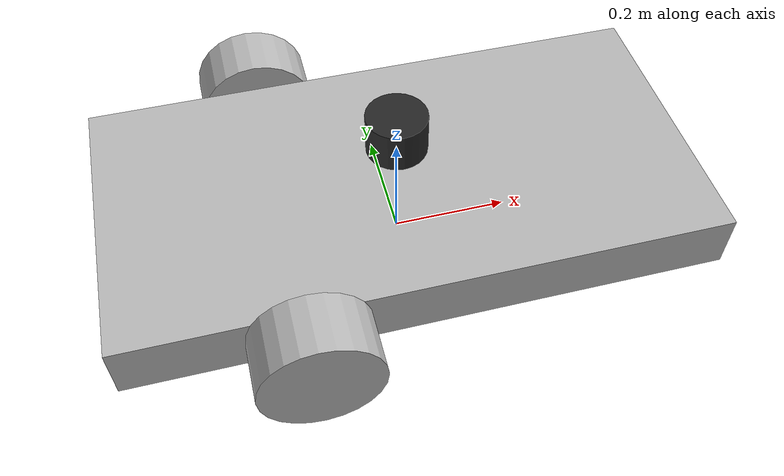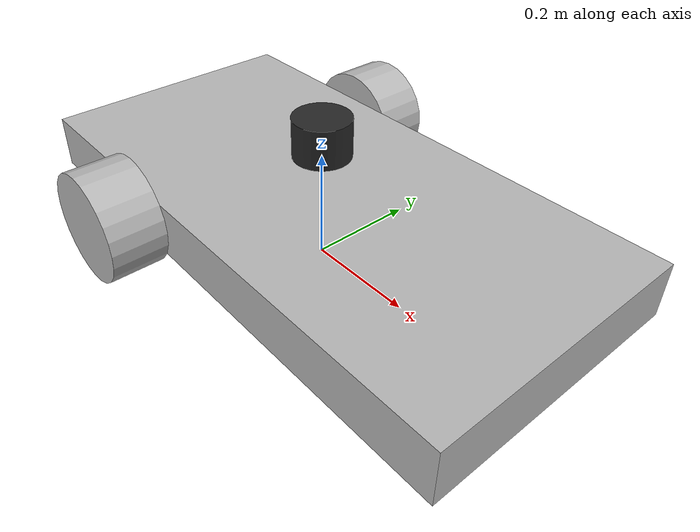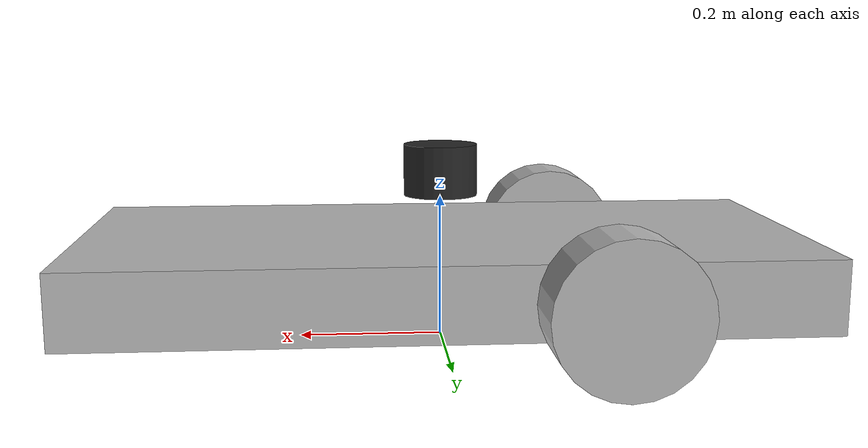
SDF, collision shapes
<?xml version="1.0" encoding="UTF-8"?>
<sdf version="1.9">
  <model name="rover_differential_lidar_3d">
    <include merge="true">
      <uri>model://rover_differential</uri>
    </include>
    <include merge="true">
      <uri>model://lidar_3d_v1</uri>
      <pose>0 0 0.2 0 0 0</pose>
    </include>
    <joint name="LidarJoint" type="fixed">
      <parent>base_link</parent>
      <child>link</child>
      <pose relative_to="base_link">0 0 0.2 0 0 0</pose>
    </joint>
  </model>
</sdf>

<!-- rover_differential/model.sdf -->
<sdf version="1.6">
  <model name='rover_differential'>
    <!--Links-->
    <link name='base_link'>
      <pose relative_to='__model__'>0 0 0.1 0 0 0</pose>
      <inertial>
        <mass>5.0</mass>
        <pose>-0.2 0 0 0 0 0</pose> <!-- Center of mass offset to wheel axis-->
        <inertia>
          <ixx>0.030208333</ixx>
          <ixy>0.0</ixy>
          <ixz>0.0</ixz>
          <iyy>0.108333333</iyy>
          <iyz>0.0</iyz>
          <izz>0.130208333</izz>
        </inertia>
      </inertial>
      <visual name='visual'>
        <pose>0 0 -0.05 0 0 0</pose>
        <geometry>
          <mesh>
            <uri>model://rover_differential/meshes/rover_differential_base.dae</uri>
          </mesh>
        </geometry>
      </visual>
      <collision name='collision'>
        <geometry>
          <box>
            <size>1 0.5 0.1</size>
          </box>
        </geometry>
      </collision>

      <!--Sensors-->
      <sensor name="air_pressure_sensor" type="air_pressure">
        <always_on>1</always_on>
        <update_rate>50</update_rate>
        <air_pressure>
          <!-- Noise modeled after BMP390 -->
          <pressure>
            <noise type="gaussian">
              <mean>0</mean>
              <stddev>3</stddev>
            </noise>
          </pressure>
        </air_pressure>
      </sensor>
      <sensor name="magnetometer_sensor" type="magnetometer">
        <always_on>1</always_on>
        <update_rate>100</update_rate>
        <magnetometer>
          <!-- TODO: update to fix units and coordinate system when we move past Harmonic -->
          <!-- See https://github.com/gazebosim/gz-sim/pull/2460 -->
          <!-- 3mgauss RMS: NOTE: noise is in tesla but sensor reports data in gauss -->
          <!-- Noise modeled after IIS2MDC -->
          <x>
            <noise type="gaussian">
              <stddev>0.0001</stddev>
            </noise>
          </x>
          <y>
            <noise type="gaussian">
              <stddev>0.0001</stddev>
            </noise>
          </y>
          <z>
            <noise type="gaussian">
              <stddev>0.0001</stddev>
            </noise>
          </z>
        </magnetometer>
      </sensor>
      <sensor name="imu_sensor" type="imu">
        <always_on>1</always_on>
        <update_rate>250</update_rate>
        <imu>
          <angular_velocity>
            <!-- Noise modeled after IIM42653 -->
            <!-- 0.05 deg/s converted to rad/s -->
            <x>
              <noise type="gaussian">
                <mean>0.0</mean>
                <stddev>0.0008726646</stddev>
              </noise>
            </x>
            <y>
              <noise type="gaussian">
                <mean>0.0</mean>
                <stddev>0.0008726646</stddev>
              </noise>
            </y>
            <z>
              <noise type="gaussian">
                <mean>0.0</mean>
                <stddev>0.0008726646</stddev>
              </noise>
            </z>
          </angular_velocity>
          <linear_acceleration>
            <!-- Noise modeled after IIM42653 -->
            <!-- X & Y axis: 0.65 mg-rms converted to m/ss -->
            <x>
              <noise type="gaussian">
                <mean>0.0</mean>
                <stddev>0.00637</stddev>
              </noise>
            </x>
            <y>
              <noise type="gaussian">
                <mean>0.0</mean>
                <stddev>0.00637</stddev>
              </noise>
            </y>
            <!-- Z axis: 0.70 mg-rms converted to m/ss-->
            <z>
              <noise type="gaussian">
                <mean>0.0</mean>
                <stddev>0.00686</stddev>
              </noise>
            </z>
          </linear_acceleration>
        </imu>
      </sensor>
      <sensor name="navsat_sensor" type="navsat">
        <always_on>1</always_on>
        <update_rate>30</update_rate>
      </sensor>
    </link>

    <link name='wheel_rear_left_link'>
      <pose relative_to="base_link">-0.2 0.3 0 -1.5707 0 0</pose>
      <inertial>
        <mass>0.5</mass>
        <inertia>
          <ixx>0.000807292</ixx>
          <ixy>0</ixy>
          <ixz>0</ixz>
          <iyy>0.000807292</iyy>
          <iyz>0</iyz>
          <izz>0.00140625</izz>
        </inertia>
      </inertial>
      <visual name='visual'>
        <pose>0 0 0 0 0 0</pose>
        <geometry>
          <mesh>
            <uri>model://rover_differential/meshes/rover_differential_wheel.dae</uri>
          </mesh>
        </geometry>
      </visual>
      <collision name='collision'>
        <geometry>
          <cylinder>
            <radius>0.1</radius>
            <length>0.1</length>
          </cylinder>
        </geometry>
        <surface>
          <friction>
            <ode>
              <mu>1.0</mu>
              <mu2>1.0</mu2>
              <fdir1>1 0 0</fdir1>
              <slip1>0.0</slip1>
              <slip2>0.0</slip2>
            </ode>
          </friction>
        </surface>
      </collision>
    </link>

    <link name='wheel_rear_right_link'>
      <pose relative_to="base_link">-0.2 -0.3 0 -1.5707 0 0</pose>
      <inertial>
        <mass>0.5</mass>
        <inertia>
          <ixx>0.000807292</ixx>
          <ixy>0</ixy>
          <ixz>0</ixz>
          <iyy>0.000807292</iyy>
          <iyz>0</iyz>
          <izz>0.00140625</izz>
        </inertia>
      </inertial>
      <visual name='visual'>
        <pose>0 0 0 0 0 0</pose>
        <geometry>
          <mesh>
            <uri>model://rover_differential/meshes/rover_differential_wheel.dae</uri>
          </mesh>
        </geometry>
      </visual>
      <collision name='collision'>
        <geometry>
          <cylinder>
            <radius>0.1</radius>
            <length>0.1</length>
          </cylinder>
        </geometry>
        <surface>
          <friction>
            <ode>
              <mu>1.0</mu>
              <mu2>1.0</mu2>
              <fdir1>1 0 0</fdir1>
              <slip1>0.0</slip1>
              <slip2>0.0</slip2>
            </ode>
          </friction>
        </surface>
      </collision>
    </link>

    <link name='cast_wheel_front_link'>
      <pose relative_to="base_link">0.25 0 -0.025 -1.5707 0 0</pose>
      <inertial>
        <mass>1</mass>
        <inertia>
          <ixx>0.016</ixx>
          <ixy>0</ixy>
          <ixz>0</ixz>
          <iyy>0.016</iyy>
          <iyz>0</iyz>
          <izz>0.016</izz>
        </inertia>
      </inertial>
      <visual name='visual'>
        <geometry>
          <sphere>
            <radius>0.075</radius>
          </sphere>
        </geometry>
        <material>
          <ambient>0 0 0 1</ambient>
          <diffuse>0 0 0 1</diffuse>
          <specular>0 0 0 0</specular>
          <emissive>0 0 0 1</emissive>
        </material>
      </visual>
      <collision name='collision'>
        <geometry>
          <sphere>
            <radius>0.075</radius>
          </sphere>
        </geometry>
        <surface>
          <friction>
            <ode>
              <mu>0</mu>
              <mu2>0</mu2>
              <fdir1>1 0 0</fdir1>
            </ode>
          </friction>
        </surface>
      </collision>
    </link>

    <link name='cast_wheel_rear_link'>
      <pose relative_to="base_link">-0.3 0 -0.025 -1.5707 0 0</pose>
      <inertial>
        <mass>1</mass>
        <inertia>
          <ixx>0.016</ixx>
          <ixy>0</ixy>
          <ixz>0</ixz>
          <iyy>0.016</iyy>
          <iyz>0</iyz>
          <izz>0.016</izz>
        </inertia>
      </inertial>
      <visual name='visual'>
        <geometry>
          <sphere>
            <radius>0.075</radius>
          </sphere>
        </geometry>
        <material>
          <ambient>0 0 0 1</ambient>
          <diffuse>0 0 0 1</diffuse>
          <specular>0 0 0 0</specular>
          <emissive>0 0 0 1</emissive>
        </material>
      </visual>
      <collision name='collision'>
        <geometry>
          <sphere>
            <radius>0.075</radius>
          </sphere>
        </geometry>
        <surface>
          <friction>
            <ode>
              <mu>0</mu>
              <mu2>0</mu2>
              <fdir1>1 0 0</fdir1>
            </ode>
          </friction>
        </surface>
      </collision>
    </link>

    <!-- Joints -->
    <joint name='wheel_rear_left_joint' type='revolute'>
      <pose relative_to='wheel_rear_left_link'/>
      <parent>base_link</parent>
      <child>wheel_rear_left_link</child>
      <axis>
        <xyz expressed_in='__model__'>0 1 0</xyz>
      </axis>
    </joint>

    <joint name='wheel_rear_right_joint' type='revolute'>
      <pose relative_to='wheel_rear_right_link'/>
      <parent>base_link</parent>
      <child>wheel_rear_right_link</child>
      <axis>
        <xyz expressed_in='__model__'>0 1 0</xyz>
      </axis>
    </joint>

    <joint name='cast_wheel_front_joint' type='ball'>
      <pose relative_to='cast_wheel_front_link'/>
      <parent>base_link</parent>
      <child>cast_wheel_front_link</child>
    </joint>

    <joint name='cast_wheel_rear_link' type='ball'>
      <pose relative_to='cast_wheel_rear_link'/>
      <parent>base_link</parent>
      <child>cast_wheel_rear_link</child>
    </joint>

    <!--Plugins-->
    <plugin filename="gz-sim-joint-controller-system" name="gz::sim::systems::JointController">
      <joint_name>wheel_rear_left_joint</joint_name>
      <sub_topic>command/motor_speed</sub_topic>
      <control_type>velocity</control_type>
      <use_actuator_msg>true</use_actuator_msg>
      <actuator_number>1</actuator_number>
    </plugin>

    <plugin filename="gz-sim-joint-controller-system" name="gz::sim::systems::JointController">
      <joint_name>wheel_rear_right_joint</joint_name>
      <sub_topic>command/motor_speed</sub_topic>
      <control_type>velocity</control_type>
      <use_actuator_msg>true</use_actuator_msg>
      <actuator_number>0</actuator_number>
    </plugin>

    <plugin filename="gz-sim-joint-state-publisher-system" name="gz::sim::systems::JointStatePublisher">
      <joint_name>wheel_rear_left_joint</joint_name>
      <joint_name>wheel_rear_right_joint</joint_name>
    </plugin>
  </model>
</sdf>

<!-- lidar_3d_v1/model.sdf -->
<sdf version="1.9">
  <model name="lidar_3d_v1">
    <link name="link">
      <pose>0 0 0 0 0 0</pose>
      <inertial>
        <pose>0 0 0.0375 0 0 0</pose>
        <mass>0.83</mass>
        <inertia>
          <ixx>0.000637</ixx>
          <ixy>0</ixy>
          <ixz>0</ixz>
          <iyy>0.000637</iyy>
          <iyz>0</iyz>
          <izz>0.000932</izz>
        </inertia>
      </inertial>
      <collision name="collision">
        <pose>0 0 0.0375 0 0 0</pose>
        <geometry>
          <cylinder>
            <radius>0.0516</radius>
            <length>0.0717</length>
          </cylinder>
        </geometry>
      </collision>
      <visual name="visual">
        <pose>0 0 0.0375 0 0 0</pose>
        <geometry>
          <cylinder>
            <radius>0.0516</radius>
            <length>0.0717</length>
          </cylinder>
        </geometry>
        <material>
          <ambient>0.1 0.1 0.1 1</ambient>
          <diffuse>0.15 0.15 0.15 1</diffuse>
          <specular>0.2 0.2 0.2 1</specular>
        </material>
      </visual>
      <sensor name="lidar_3d_v1" type="gpu_lidar">
        <gz_frame_id>link</gz_frame_id>
        <pose>0 0 0.0375 0 0 0</pose>
        <ray>
          <scan>
            <horizontal>
              <samples>1024</samples>
              <resolution>1</resolution>
              <min_angle>-3.141593</min_angle>
              <max_angle>3.141593</max_angle>
            </horizontal>
            <vertical>
              <samples>16</samples>
              <resolution>1</resolution>
              <min_angle>-0.261799</min_angle>
              <max_angle>0.261799</max_angle>
            </vertical>
          </scan>
          <range>
            <min>0.1</min>
            <max>100.0</max>
            <resolution>0.01</resolution>
          </range>
          <noise>
            <type>gaussian</type>
            <mean>0.0</mean>
            <stddev>0.01</stddev>
          </noise>
        </ray>
        <always_on>1</always_on>
        <update_rate>10</update_rate>
        <visualize>false</visualize>
      </sensor>
    </link>
  </model>
</sdf>
